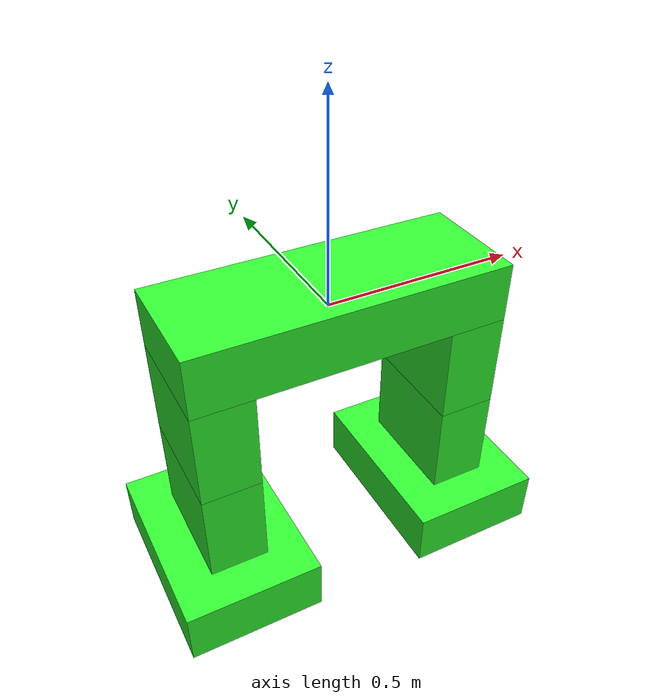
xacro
<robot xmlns:xacro="http://www.ros.org/wiki/xacro"  name="robot">

    <xacro:property name="thikness" value="0.15" />
    <xacro:property name="lenght" value="0.5" />
    <xacro:property name="leg_len" value="0.5" />
    <xacro:property name="foot_len" value="0.2" />
    <xacro:property name="toll" value="0.005" />
    <xacro:property name="mass" value="0.3" />

    <ros2_control name="KumiHardware" type="system">
        <hardware>
            <plugin>gazebo_ros2_control/GazeboSystem</plugin>
        </hardware>
        <joint name="front_sh">
            <command_interface name="position"/>
            <state_interface name="position"/>
            <state_interface name="velocity"/>
        </joint>
        <joint name="back_sh">
            <command_interface name="position"/>
            <state_interface name="position"/>
            <state_interface name="velocity"/>
        </joint>
        <joint name="front_knee">
            <command_interface name="position"/>
            <state_interface name="position"/>
            <state_interface name="velocity"/>
        </joint>
        <joint name="back_knee">
            <command_interface name="position"/>
            <state_interface name="position"/>
            <state_interface name="velocity"/>
        </joint>
        <joint name="front_ank">
            <command_interface name="position"/>
            <state_interface name="position"/>
            <state_interface name="velocity"/>
        </joint>
        <joint name="back_ank">
            <command_interface name="position"/>
            <state_interface name="position"/>
            <state_interface name="velocity"/>
        </joint>
    </ros2_control>

    <gazebo>
        <plugin name="gazebo_ros2_control" filename="libgazebo_ros2_control.so">
            <parameters>/home/andreas/dev_ws/install/kumi_controller/share/kumi_controller/config/kumi_effort_cntr_cnfg.yaml</parameters>
        </plugin>
    </gazebo>

    <physics type="ode">
    <max_step_size>0.001</max_step_size>
    <real_time_update_rate>1000</real_time_update_rate>
    <ode>
        <solver>
        <iters>50</iters>
        <sor>1.3</sor>
        </solver>
    </ode>
    </physics>

    <link name="body">
        <visual>
            <origin xyz="0 0 0" rpy="0 0 0"/>
            <geometry>
                <box size="${lenght+2*thikness} ${thikness*2} ${thikness}" />
            </geometry>
            <material name="green">
                <color rgba="0.2 1 0.2 1"/>
            </material>
        </visual>
        <collision>
            <origin xyz="0 0 0" rpy="0 0 0"/>
            <geometry>
                <box size="${lenght/1.5-toll} ${thikness*2-toll} ${thikness-toll}" />
            </geometry>
        </collision>
        <inertial>
            <origin xyz="0 0 0" rpy="0 0 0"/>
            <mass value="0.5" />
            <inertia ixx="0.015" ixy="0.0" ixz="0.0" iyy="0.340833" iyz="0.0" izz="0.340833" />
        </inertial>
    </link>

    <gazebo reference="body">
        <sensor name="imu_sensor" type="imu">
            <update_rate>20.0</update_rate>
            <always_on>true</always_on>
            <imu>
            <angular_velocity>
                <noise type="gaussian">
                <mean>0.0</mean>
                <stddev>0.1</stddev>
                </noise>
            </angular_velocity>
            <linear_acceleration>
                <noise type="gaussian">
                <mean>0.0</mean>
                <stddev>0.1</stddev>
                </noise>
            </linear_acceleration>
            </imu>
            <plugin filename="libgazebo_ros_imu_sensor.so" name="imu_sensor">
            <ros>
                <namespace>/</namespace>
                <remapping>~/out:=/imu</remapping>
            </ros>
            </plugin>
        </sensor>
    </gazebo>

    <joint name="front_sh" type="revolute">
        <origin xyz="${lenght/2+thikness/2} 0 0" rpy="0 0 0"/>
        <parent link="body"/>
        <child link="front_leg"/>
        <axis xyz="0 -1 0"/>
        <limit lower="-${pi/2}" upper="${pi}" velocity="100" effort="100"/>
    </joint>

    <transmission name="front_sh_trans">
        <type>transmission_interface/SimpleTransmission</type>
        <actuator name="motor1">
            <mechanicalReduction>1.0</mechanicalReduction>
        </actuator>
    </transmission>

    <link name="front_leg">
        <visual>
            <origin xyz="0 0 ${-leg_len/4 -thikness/2}" rpy="0 0 0"/>
            <geometry>
                <box size="${thikness} ${thikness*2} ${leg_len/2}" />
            </geometry>
            <material name="orange">
                <color rgba="0.2 1 0.2 1"/>
            </material>
        </visual>
        <collision>
            <origin xyz="0 0 ${-leg_len/4 -thikness/2}" rpy="0 0 0"/>
            <geometry>
                <box size="${thikness-toll} ${thikness*2-toll} ${leg_len/2-toll}" />
            </geometry>
        </collision>
        <inertial>
            <origin xyz="${thikness/2} 0 ${-leg_len/4}" rpy="0 0 0"/>
            <mass value="0.3" />
            <inertia ixx="0.090833" ixy="0.0" ixz="0.0" iyy="0.090833" iyz="0.0" izz="0.015000" />
        </inertial>
    </link>

    <joint name="front_knee" type="revolute">
        <origin xyz="0 0 ${-leg_len/2-thikness/2}" rpy="0 0 0"/>
        <parent link="front_leg"/>
        <child link="front_leg_d"/>
        <axis xyz="0 0 1"/>
        <limit lower="${-pi/4}" upper="${pi/4}" velocity="100" effort="100"/>
    </joint>

    <transmission name="front_knee_trans">
        <type>transmission_interface/SimpleTransmission</type>
        <actuator name="motor2">
            <mechanicalReduction>1.0</mechanicalReduction>
        </actuator>
    </transmission>

    <link name="front_leg_d">
        <visual>
            <origin xyz="0 0 ${-leg_len/4}" rpy="0 0 0"/>
            <geometry>
                <box size="${thikness} ${thikness*2} ${leg_len/2}" />
            </geometry>
            <material name="orange">
                <color rgba="0.2 1 0.2 1"/>
            </material>
        </visual>
        <collision>
            <origin xyz="0 0 ${-leg_len/4}" rpy="0 0 0"/>
            <geometry>
                <box size="${thikness-toll} ${thikness*2-toll} ${leg_len/3-toll}" />
            </geometry>
        </collision>
        <inertial>
            <origin xyz="0 0 ${-leg_len/4}" rpy="0 0 0"/>
            <mass value="0.3" />
            <inertia ixx="0.090833" ixy="0.0" ixz="0.0" iyy="0.090833" iyz="0.0" izz="0.015000" />
        </inertial>
    </link>

    <joint name="front_ank" type="revolute">
        <origin xyz="0 0 ${-leg_len/2 - thikness/2}" rpy="0 0 0"/>
        <parent link="front_leg_d"/>
        <child link="front_foot"/>
        <axis xyz="0 -1 0"/>
        <limit lower="${-pi/4}" upper="${pi/4}" velocity="100" effort="100"/>
    </joint>

    <transmission name="front_ank_trans">
        <type>transmission_interface/SimpleTransmission</type>
        <actuator name="motor3">
            <mechanicalReduction>1.0</mechanicalReduction>
        </actuator>
    </transmission>0.0

    <link name="front_foot">
        <visual>
            <origin xyz="0 0 0" rpy="0 0 0"/>
            <geometry>
                <box size="${foot_len+thikness} ${foot_len*2.5} ${thikness-toll}" />
            </geometry>
            <material name="white">
                <color rgba="0.2 1 0.2 1"/>
            </material>
        </visual>
        <collision>
            <origin xyz="0 0 0" rpy="0 0 0"/>
            <geometry>
                <box size="${foot_len+thikness} ${foot_len*2.5} ${thikness-toll}" />
            </geometry>
        </collision>
        <inertial>
            <origin xyz="0 0 0" rpy="0 0 0"/>
            <mass value="0.2" />
            <inertia ixx="0.241667" ixy="0.0" ixz="0.0" iyy="0.454167" iyz="0.0" izz="0.163333" />
        </inertial>
    </link>

    <joint name="back_sh" type="revolute">
        <origin xyz="${-lenght/2-thikness/2} 0 0" rpy="0 0 0"/>
        <parent link="body"/>
        <child link="back_leg"/>
        <axis xyz="0 -1 0"/>
        <limit lower="-${1.5*pi}" upper="${pi/2}" velocity="100" effort="100"/>
    </joint>

    <transmission name="back_sh_trans">
        <type>transmission_interface/SimpleTransmission</type>
        <actuator name="motor4">
            <mechanicalReduction>1.0</mechanicalReduction>
        </actuator>
    </transmission>

    <link name="back_leg">
        <visual>
            <origin xyz="0 0 ${-leg_len/4 -thikness/2}" rpy="0 0 0"/>
            <geometry>
                <box size="${thikness} ${thikness*2} ${leg_len/2}" />
            </geometry>
            <material name="orange">
                <color rgba="0.2 1 0.2 1"/>
            </material>
        </visual>
        <collision>
            <origin xyz="0 0 ${-leg_len/4 -thikness/2}" rpy="0 0 0"/>
            <geometry>
                <box size="${thikness-toll} ${thikness*2-toll} ${leg_len/2-toll}" />
            </geometry>
        </collision>
        <inertial>
            <origin xyz="${-thikness/2} 0 ${-leg_len/4}" rpy="0 0 0"/>
            <mass value="0.3" />
            <inertia ixx="0.090833" ixy="0.0" ixz="0.0" iyy="0.090833" iyz="0.0" izz="0.015000" />
        </inertial>
    </link>

    <joint name="back_knee" type="revolute">
        <origin xyz="0 0 ${-leg_len/2 -thikness/2}" rpy="0 0 0"/>
        <parent link="back_leg"/>
        <child link="back_leg_d"/>
        <axis xyz="0 0 1"/>
        <limit lower="-${pi/4}" upper="${pi/4}" velocity="100" effort="100"/>
    </joint>

    <transmission name="back_knee_trans">
        <type>transmission_interface/SimpleTransmission</type>
        <actuator name="motor5">
            <mechanicalReduction>1.0</mechanicalReduction>
        </actuator>
    </transmission>

    <link name="back_leg_d">
        <visual>
            <origin xyz="0 0 ${-leg_len/4}" rpy="0 0 0"/>
            <geometry>
                <box size="${thikness} ${thikness*2} ${leg_len/2}" />
            </geometry>
            <material name="orange">
                <color rgba="0.2 1 0.2 1"/>
            </material>
        </visual>
        <collision>
            <origin xyz="0 0 ${-leg_len/4}" rpy="0 0 0"/>
            <geometry>
                <box size="${thikness-toll} ${thikness*2-toll} ${leg_len/3-toll}" />
            </geometry>
        </collision>
        <inertial>
            <origin xyz="0 0 ${-leg_len/4}" rpy="0 0 0"/>
            <mass value="0.3" />
            <inertia ixx="0.090833" ixy="0.0" ixz="0.0" iyy="0.090833" iyz="0.0" izz="0.015000" />
        </inertial>
    </link>

    <joint name="back_ank" type="revolute">
        <origin xyz="0 0 ${-leg_len/2 - thikness/2}" rpy="0 0 0"/>
        <parent link="back_leg_d"/>
        <child link="back_foot"/>
        <axis xyz="0 -1 0"/>
        <limit lower="-${pi/4}" upper="${pi/4}" velocity="100" effort="100"/>
    </joint>

    <transmission name="back_ank_trans">
        <type>transmission_interface/SimpleTransmission</type>
        <actuator name="motor6">
            <mechanicalReduction>1.0</mechanicalReduction>
        </actuator>
    </transmission>

    <link name="back_foot">
        <visual>
            <origin xyz="0 0 0" rpy="0 0 0"/>
            <geometry>
                <box size="${foot_len+thikness} ${foot_len*2.5} ${thikness-toll}" />
            </geometry>
            <material name="white">
                <color rgba="0.2 1 0.2 1"/>
            </material>
        </visual>
        <collision>
            <origin xyz="0 0 0" rpy="0 0 0"/>
            <geometry>
                <box size="${foot_len+thikness} ${foot_len*2.5} ${thikness-toll}" />
            </geometry>
        </collision>
        <inertial>
            <origin xyz="0 0 0" rpy="0 0 0"/>
            <mass value="0.2" />
            <inertia ixx="0.241667" ixy="0.0" ixz="0.0" iyy="0.454167" iyz="0.0" izz="0.163333" />
        </inertial>
    </link>

</robot>
